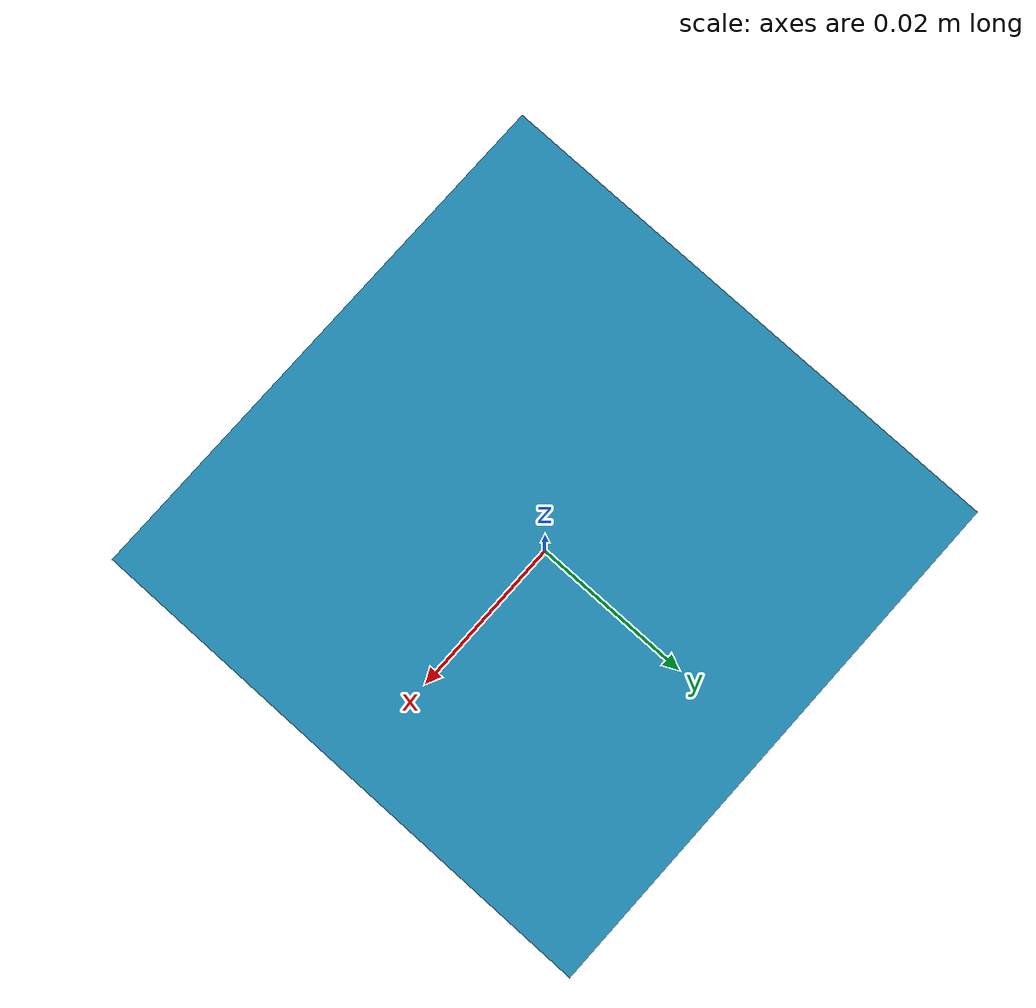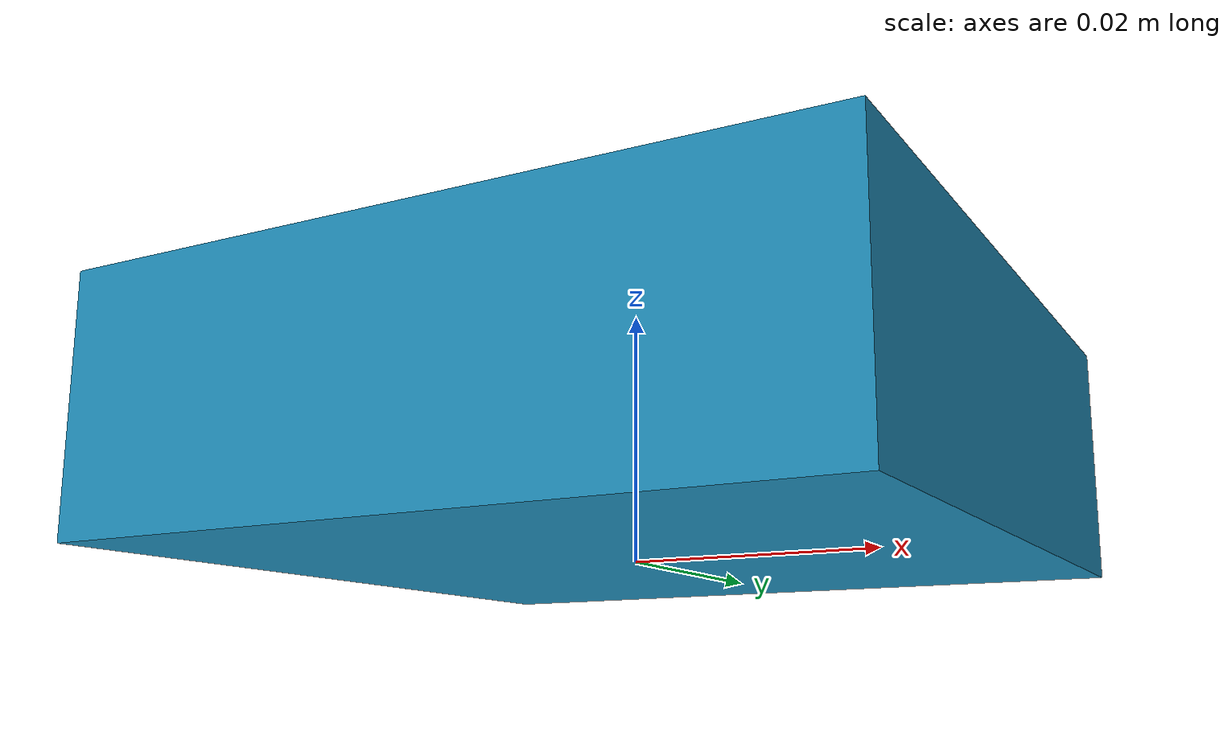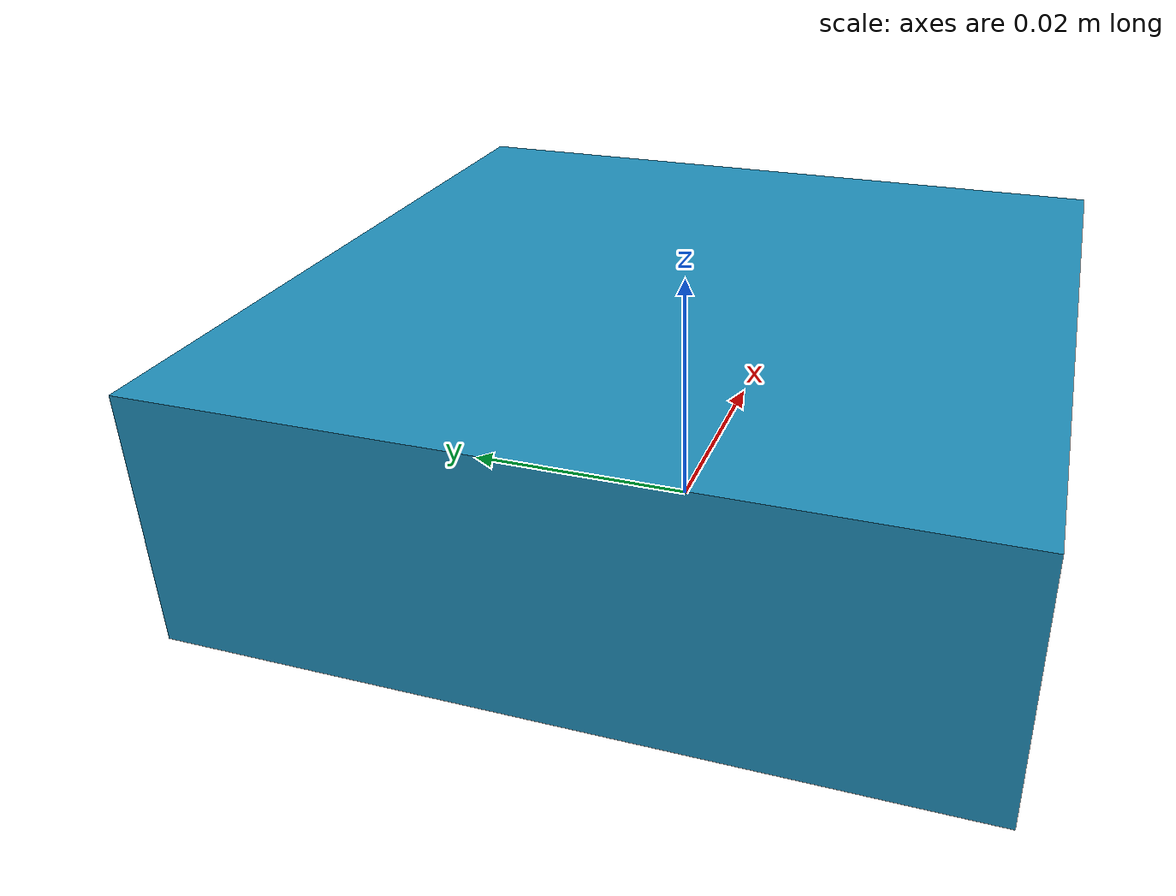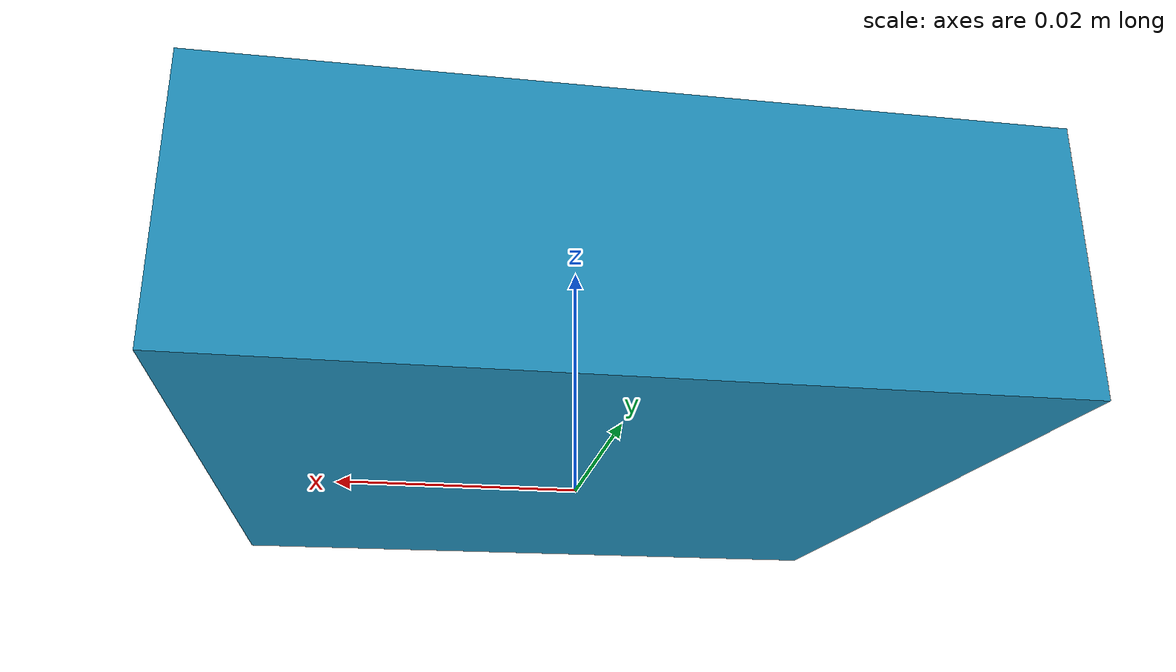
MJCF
<mujoco model="touch_grid_module">
  <asset>
    <material name="force_f1_material" rgba="0.12 0.55 0.72 1"
              specular="0.3" shininess="0.3"/>
  </asset>
  <worldbody>
    <body name="sensor_root">
      <!-- Mounting origin at the bottom centre; local +Z points out of the pad. -->
      <site name="sensor_base" pos="0 0 0" size="0.001" group="4"/>
      <body name="force_f1" pos="0 0 0.01">
        <geom name="force_f1_shape" type="box" size="0.03 0.03 0.01"
              material="force_f1_material" group="1"/>
      </body>
      <!-- Contact positions and forces are expressed in this local frame.
           It is a reference site only: collection is declared in contract.json. -->
      <site name="surface_frame" pos="0 0 0.02" size="0.001" group="4"/>
    </body>
  </worldbody>
</mujoco>
